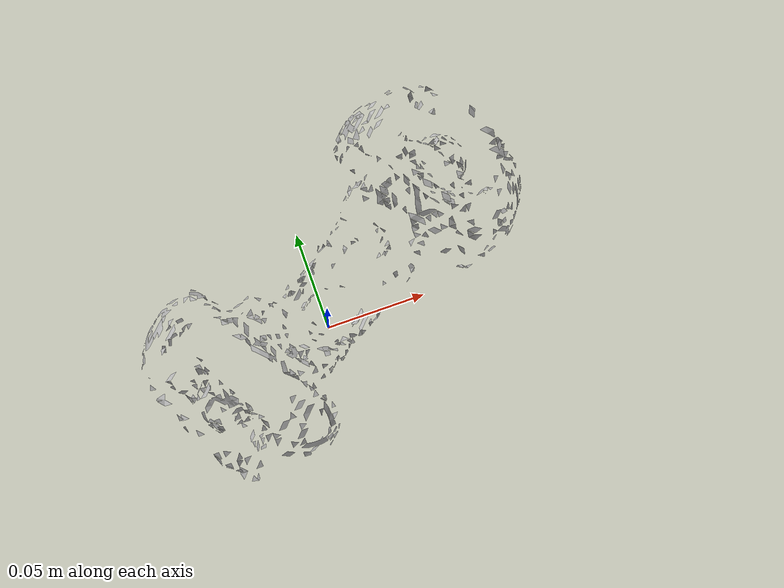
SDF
<?xml version='1.0'?>
<sdf version="1.4">
  <model name="k_toy_airplane">
    <static>false</static>
    <link name="link">
      <inertial>
        <pose>0.0026578548221613692 0.0009480870889687306 0.26369461885246365 -2.037648796001014 -1.5641921137577115 2.524829992722601</pose>
        <mass>0.00012310776263790328</mass>
        <inertia>
          <ixx>3.305453214381768e-07</ixx>
          <ixy>3.2339572159229863e-22</ixy>
          <ixz>-1.92336369939078e-22</ixz>
          <iyy>-5.886731767613729e-06</iyy>
          <iyz>-1.0239241724130742e-21</iyz>
          <izz>-6.092003040511364e-06</izz>
        </inertia>
      </inertial>
      <collision name="collision">
        <geometry>
          <mesh>
            <!-- Use a downsampled mesh for collisions -->
            <uri>model://072-k_toy_airplane/tsdf/textured.obj</uri>
	        </mesh>
        </geometry>
        <surface>
      </surface>
      </collision>
      <visual name="visual">
        <geometry>
          <mesh>
            <uri>model://072-k_toy_airplane/tsdf/textured.obj</uri>
	        </mesh>
        </geometry>
        <material>
          <script>
            <uri>model://072-k_toy_airplane/k_toy_airplane.material</uri>
            <name>k_toy_airplane</name>
          </script>
        </material>
      </visual>
    </link>
  </model>
</sdf>
